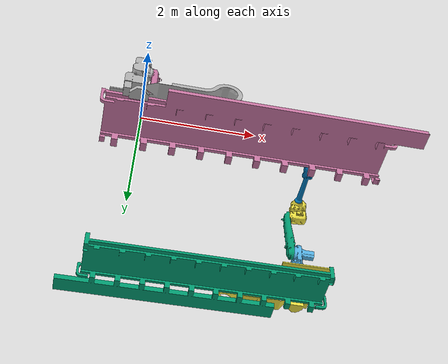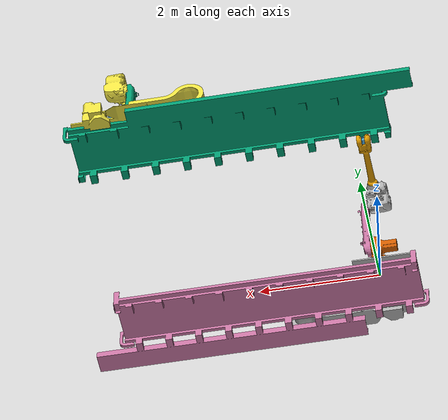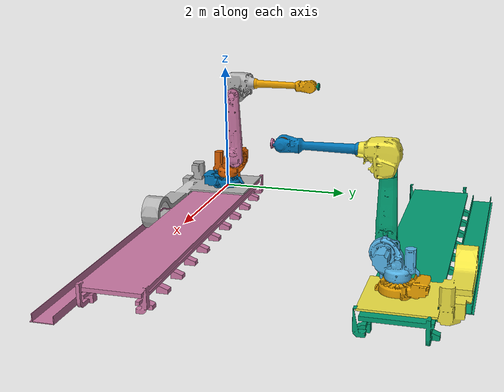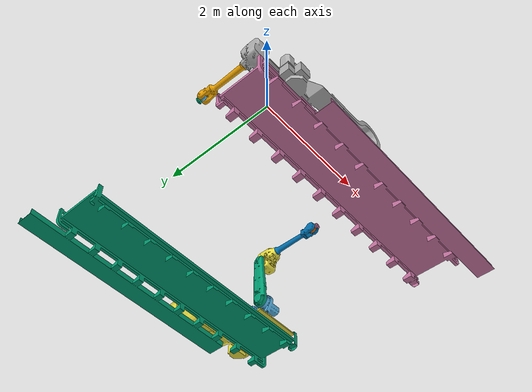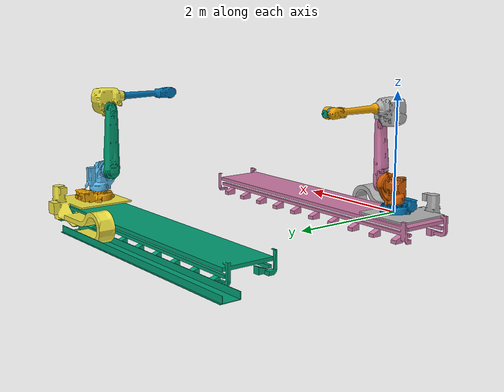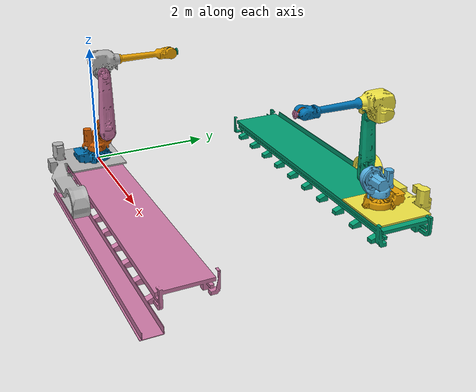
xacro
<?xml version="1.0" ?>
  <robot name="abb_irb4600s" xmlns:xacro="http://ros.org/wiki/xacro">
    <!-- Define robot ids -->
    <xacro:property name="robot_id1" value="robLL/"/>
    <xacro:property name="robot_id2" value="robRR/"/>

    <xacro:include filename="$(find abb_irb4600s_robots)/urdf/abb_irb4600_40_255_irbt4004_macro.xacro"/>

    <xacro:abb_irb4600_robot prefix="${robot_id1}"/>
    <xacro:abb_irb4600_robot prefix="${robot_id2}"/>

    <link name="world" />
    <joint name="${robot_id2}origin" type="fixed">
        <parent link="world" />
        <child link="${robot_id2}irbt4004" />
        <origin xyz="0.0 0.0 0.0" rpy="0.0 0.0 0.0" />
    </joint>

    <joint name="${robot_id1}origin" type="fixed">
        <parent link="world" />
        <child link="${robot_id1}irbt4004" />
        <origin xyz="3.6993 3.4510 0.0316" rpy="0.0 0.0 ${pi}" />
    </joint>

  </robot>

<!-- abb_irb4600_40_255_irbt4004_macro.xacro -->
<robot name="abb_irb4600_robot" xmlns:xacro="http://ros.org/wiki/xacro">
   <xacro:macro name="abb_irb4600_robot" params="prefix">

    <xacro:include filename="$(find abb_irb4600s_robots)/urdf/abb_irb4600_40_255_macro.xacro"/>
    <xacro:include filename="$(find abb_irb4600s_robots)/urdf/irbt4004_macro.xacro"/>

    <xacro:abb_irb4600_40_255 prefix="${prefix}"/>
    <xacro:irbt4004 prefix="${prefix}" connected_to="${prefix}base_link" orientation="${pi/2}"/>
    </xacro:macro>
  </robot>

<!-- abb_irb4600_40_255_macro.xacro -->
<robot xmlns:xacro="http://ros.org/wiki/xacro">
  <xacro:macro name="abb_irb4600_40_255" params="prefix">

    <!-- link list -->
    <link name="${prefix}base_link">
     <inertial>
        <origin xyz="0.0 0.0 0.0"/>
        <mass value="120.00000"/>
        <inertia ixx="-4.98000" iyy="-5.95200" izz="0.82800" ixy="0.00000" ixz="2.70000" iyz="0.00000"/>
      </inertial>
      <collision name="collision">
        <geometry>
          <mesh filename="package://abb_irb4600s_robots/meshes/collision/base_link.stl"/>
        </geometry>
      </collision>
      <visual name="visual">
        <geometry>
          <mesh filename="package://abb_irb4600s_robots/meshes/visual/base_link.stl"/>
        </geometry>
      </visual>
    </link>
    <link name="${prefix}link_1">
     <inertial>
        <origin xyz="0.18000 0.00000 0.50000"/>
        <mass value="120.00000"/>
        <inertia ixx="-4.98000" iyy="-5.95200" izz="0.82800" ixy="0.00000" ixz="2.70000" iyz="0.00000"/>
      </inertial>
      <collision name="collision">
        <geometry>
          <mesh filename="package://abb_irb4600s_robots/meshes/collision/link_1.stl"/>
        </geometry>
      </collision>
      <visual name="visual">
        <geometry>
          <mesh filename="package://abb_irb4600s_robots/meshes/visual/link_1.stl"/>
        </geometry>
      </visual>
    </link>
    <link name="${prefix}link_2">
     <inertial>
        <origin xyz="0.94000 0.08000 -0.34000"/>
        <mass value="120.00000"/>
        <inertia ixx="-2.96000" iyy="-18.72601" izz="-14.95000" ixy="2.25600" ixz="-9.58800" iyz="-0.81600"/>
      </inertial>
      <collision name="collision">
        <geometry>
          <mesh filename="package://abb_irb4600s_robots/meshes/collision/link_2.stl"/>
        </geometry>
      </collision>
      <visual name="visual">
        <geometry>
          <mesh filename="package://abb_irb4600s_robots/meshes/visual/link_2.stl"/>
        </geometry>
      </visual>
    </link>
    <link name="${prefix}link_3">
     <inertial>
        <origin xyz="0.07000 -0.26600 0.08800"/>
        <mass value="120.00000"/>
        <inertia ixx="1.34500" iyy="4.65068" izz="2.76032" ixy="0.55860" ixz="0.18480" iyz="-0.70224"/>
      </inertial>
      <collision name="collision">
        <geometry>
          <mesh filename="package://abb_irb4600s_robots/meshes/collision/link_3.stl"/>
        </geometry>
      </collision>
      <visual name="visual">
        <geometry>
          <mesh filename="package://abb_irb4600s_robots/meshes/visual/link_3.stl"/>
        </geometry>
      </visual>
    </link>
    <link name="${prefix}link_4">
     <inertial>
        <origin xyz="0.00000 0.00000 1.00000"/>
        <mass value="40.00000"/>
        <inertia ixx="-8.00000" iyy="-8.00000" izz="0.48200" ixy="0.00000" ixz="0.00000" iyz="0.00000"/>
      </inertial>
      <collision name="collision">
        <geometry>
          <mesh filename="package://abb_irb4600s_robots/meshes/collision/link_4.stl"/>
        </geometry>
      </collision>
      <visual name="visual">
        <geometry>
          <mesh filename="package://abb_irb4600s_robots/meshes/visual/link_4.stl"/>
        </geometry>
      </visual>
    </link>
    <link name="${prefix}link_5">
      <inertial>
        <origin xyz="0.14000 0.00000 0.00000"/>
        <mass value="10.00000"/>
        <inertia ixx="0.04000" iyy="-0.00900" izz="-0.00400" ixy="0.00000" ixz="0.00000" iyz="0.00000"/>
      </inertial>
      <collision name="collision">
        <geometry>
          <mesh filename="package://abb_irb4600s_robots/meshes/collision/link_5.stl"/>
        </geometry>
      </collision>
      <visual name="visual">
        <geometry>
          <mesh filename="package://abb_irb4600s_robots/meshes/visual/link_5.stl"/>
        </geometry>
      </visual>
    </link>
    <link name="${prefix}link_6">
      <inertial>
        <origin xyz="0.08100 -0.09100 0.33200"/>
        <mass value="5.00000"/>
        <inertia ixx="-0.29652" iyy="-0.28792" izz="-0.04621" ixy="-0.03686" ixz="0.09396" iyz="-0.10556"/>
      </inertial>
      <collision name="collision">
        <geometry>
          <mesh filename="package://abb_irb4600s_robots/meshes/collision/link_6.stl"/>
        </geometry>
      </collision>
      <visual name="visual">
        <geometry>
          <mesh filename="package://abb_irb4600s_robots/meshes/visual/link_6.stl"/>
        </geometry>
      </visual>
    </link>
    <!-- end of link list -->

    <!-- joint list -->
    <joint type="revolute" name="${prefix}joint_1">
      <origin xyz="0 0 0.495" rpy="0 0 0"/>
      <axis xyz="0 0 1"/>
      <parent link="${prefix}base_link"/>
      <child link="${prefix}link_1"/>
      <!-- (-180 to 180) -->
      <limit lower="${-pi}" upper="${pi}" effort="100000" velocity="2.618" />
      <dynamics damping="0.2" friction="0" />
    </joint>
    <joint type="revolute" name="${prefix}joint_2">
      <origin xyz="0.175 0 0" rpy="0 0 0"/>
      <axis xyz="0 1 0"/>
      <parent link="${prefix}link_1"/>
      <child link="${prefix}link_2"/>
      <!-- (-90 to 150) -->
      <limit lower="${-pi/2}" upper="${5*pi/6}" effort="100000" velocity="2.618" />
      <dynamics damping="0.2" friction="0" />
    </joint>
    <joint type="revolute" name="${prefix}joint_3">
      <origin xyz="0 0 1.095" rpy="0 0 0"/>
      <axis xyz="0 1 0"/>
      <parent link="${prefix}link_2"/>
      <child link="${prefix}link_3"/>
      <!-- (-180 to 75) -->
      <limit lower="${-pi}" upper="${5*pi/12}" effort="100000" velocity="2.618" />
      <dynamics damping="0.2" friction="0" />
    </joint>
    <joint type="revolute" name="${prefix}joint_4">
      <origin xyz="0 0 0.175" rpy="${pi/2} 0 0"/>
      <axis xyz="1 0 0"/>
      <parent link="${prefix}link_3"/>
      <child link="${prefix}link_4"/>
      <!-- (-400 to 400) -->
      <limit lower="${-20*pi/9}" upper="${20*pi/9}" effort="10000" velocity="6.2832" />
      <dynamics damping="0.2" friction="0" />
    </joint>
    <joint type="revolute" name="${prefix}joint_5">
      <origin xyz="1.270 0 0" rpy="-${pi/2} 0 0"/>
      <axis xyz="0 1 0"/>
      <parent link="${prefix}link_4"/>
      <child link="${prefix}link_5"/>
      <!-- (-125 to 120) -->
      <limit lower="-2.18166" upper="${25*pi/36}" effort="100000" velocity="6.2832" />
      <dynamics damping="0.2" friction="0" />
    </joint>
    <joint type="revolute" name="${prefix}joint_6">
      <origin xyz="0.135 0 0" rpy="0 0 0"/>
      <axis xyz="1 0 0"/>
      <parent link="${prefix}link_5"/>
      <child link="${prefix}link_6"/>
      <!-- (-400 to 400) -->
      <limit lower="${-20*pi/9}" upper="${20*pi/9}" effort="100000" velocity="7.854" />
      <dynamics damping="0.2" friction="0" />
    </joint>
    <!-- end of joint list -->

    <!-- ROS-Industrial 'base' frame: base_link to ABB World Coordinates transform -->
    <link name="${prefix}base" />
    <joint name="${prefix}base_link-base" type="fixed">
      <origin xyz="0 0 0" rpy="0 0 0"/>
      <parent link="${prefix}base_link"/>
      <child link="${prefix}base"/>
    </joint>

    <!-- ROS-Industrial 'flange' frame: attachment point for EEF models -->
    <link name="${prefix}flange"/>
    <joint type="fixed" name="${prefix}joint_6-flange">
      <origin xyz="0 0 0" rpy="0 0 0"/>
      <parent link="${prefix}link_6"/>
      <child link="${prefix}flange"/>
    </joint>

    <!-- ROS-Industrial 'tool0' frame: all-zeros tool frame -->
    <link name="${prefix}tool0" />
    <joint name="${prefix}link_6-tool0" type="fixed">
      <origin xyz="0 0 0" rpy="0 ${radians(90)} 0" />
      <parent link="${prefix}flange" />
      <child link="${prefix}tool0" />
    </joint>
  </xacro:macro>
</robot>

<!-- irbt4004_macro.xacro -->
<robot xmlns:xacro="https://ros.org/wiki/xacro">
        <xacro:macro name="irbt4004" params="prefix connected_to orientation">
            <link name="${prefix}irbt4004">
                <visual>
                    <geometry>
                        <mesh filename="package://abb_irb4600s_robots/meshes/visual/irbt4004.stl"/>
                    </geometry>
                </visual>
                <collision>
                    <geometry>
                        <mesh filename="package://abb_irb4600s_robots/meshes/collision/irbt4004.stl"/>
                    </geometry>
                </collision>
            </link>

            <link name="${prefix}carriage">
                <visual>
                    <geometry>
                        <mesh filename="package://abb_irb4600s_robots/meshes/visual/carriage.stl"/>
                    </geometry>
                </visual>
                <collision>
                    <geometry>
                        <mesh filename="package://abb_irb4600s_robots/meshes/collision/carriage.stl"/>
                    </geometry>
                </collision>
            </link>

            <joint name="${prefix}robot_attachment" type="fixed">
                <parent link="${prefix}carriage"/>
                <child link="${connected_to}"/>
                <origin xyz="0 0 0" rpy="0 0 ${orientation}"/>
            </joint>

            <joint name="${prefix}track_carriage" type="prismatic">
                <parent link="${prefix}irbt4004"/>
                <child link="${prefix}carriage"/>
                <origin xyz="0 0 0" rpy="0 0 0"/>
                <axis xyz="1 0 0"/>
                <limit effort="0" lower="0.0" upper="3.9" velocity="1.0"/>
            </joint>

        </xacro:macro>
    </robot>
